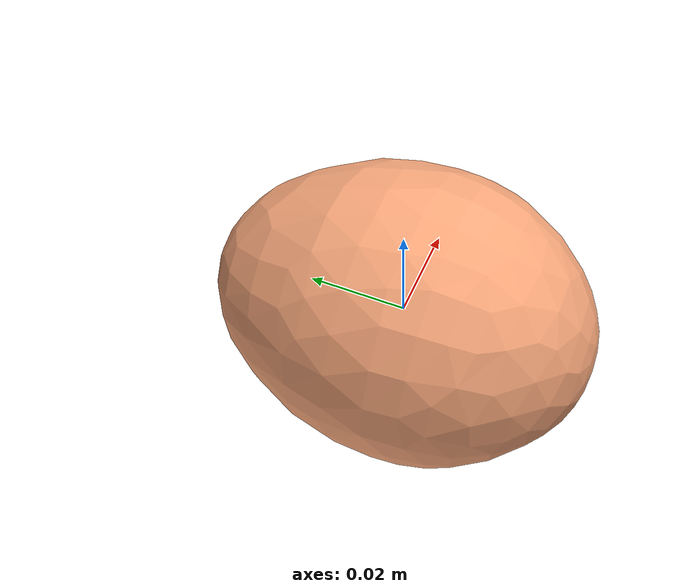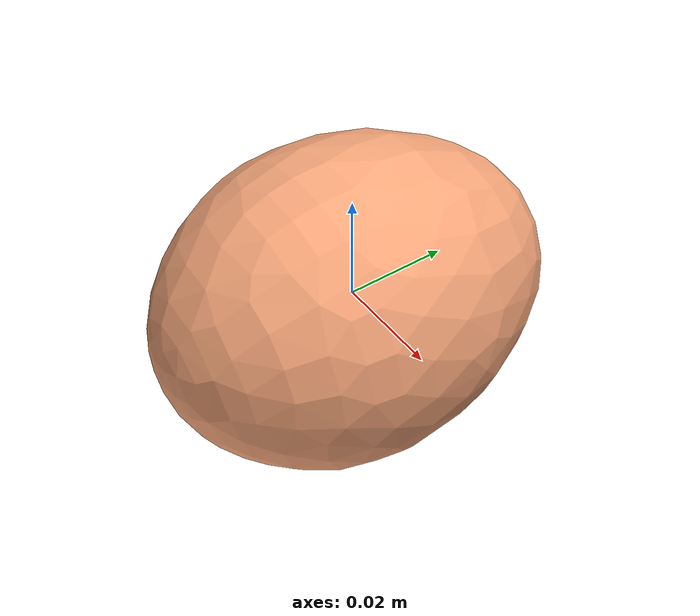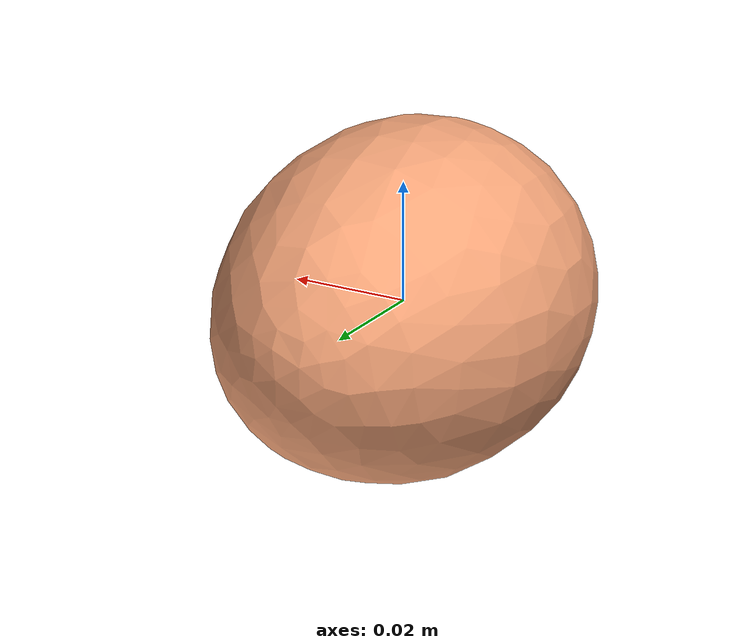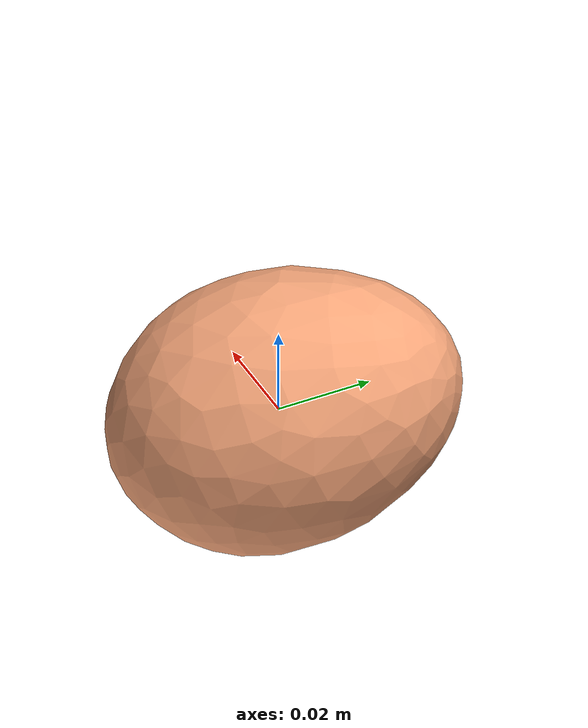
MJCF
<mujoco model="Egg_1">
  <compiler autolimits="true" boundmass="0.01" angle="radian"/>
  <default>
    <default class="/">
      <default class="__VISUAL_MJT__">
        <geom contype="0" conaffinity="0" group="0"/>
      </default>
      <default class="__STRUCTURAL_MJT__">
        <geom contype="8" conaffinity="15" group="4" friction="0.90000000000000002 0.90000000000000002 0.001" solref="0.025000000000000001 1" solimp="0.998 0.998 0.001"/>
      </default>
      <default class="__DYNAMIC_MJT__">
        <geom contype="1" conaffinity="15" group="4" friction="0.90000000000000002 0.90000000000000002 0.001" solref="0.025000000000000001 1" solimp="0.998 0.998 0.001"/>
      </default>
    </default>
  </default>
  <asset>
    <material name="material_Egg1_Mat" class="/" specular="0.5" shininess="0.5" rgba="0.96078439999999998 0.64705880000000005 0.47450979999999998 1"/>
    <mesh name="Egg_1_egg_1" class="/" file="Egg_1_egg_1/Egg_1_egg_1.obj" scale="1 1 1"/>
  </asset>
  <worldbody>
    <body name="Egg_1">
      <joint name="Egg_1_free" class="/" type="free" pos="0 0 0" axis="0 0 1" stiffness="0" range="0 0" armature="0" damping="0.10000000000000001" frictionloss="0"/>
      <body name="Egg_1_egg_1" pos="-0 0 -0.0001" quat="1 0 0 0">
        <geom name="Egg_1_egg_1" class="__VISUAL_MJT__" type="mesh" material="material_Egg1_Mat" shellinertia="true" mesh="Egg_1_egg_1"/>
        <geom name="Egg_1_PrimitiveCollider_0" class="__DYNAMIC_MJT__" type="capsule" size="0.026480577886104584 0.01060885563492775" rgba="0 1 0 1" pos="-0 0 0" quat="0.70710678118654757 0.70710678118654746 0 0"/>
      </body>
    </body>
  </worldbody>
</mujoco>
